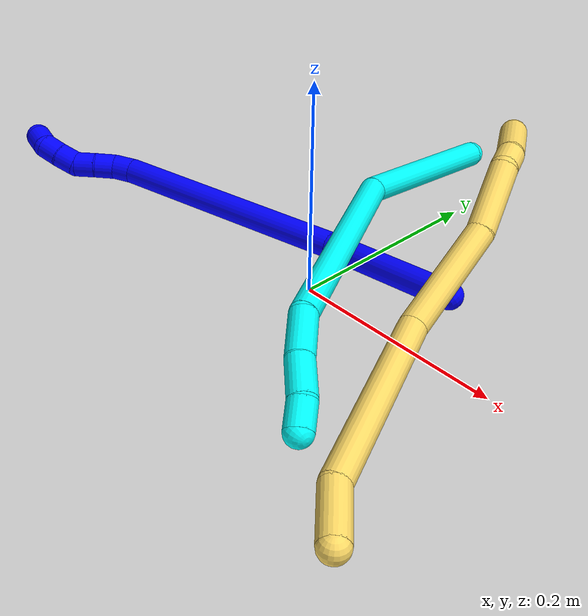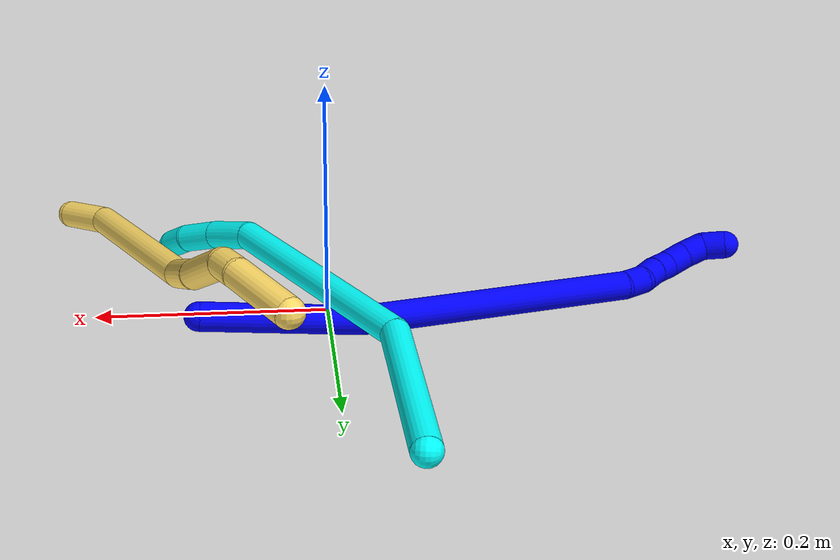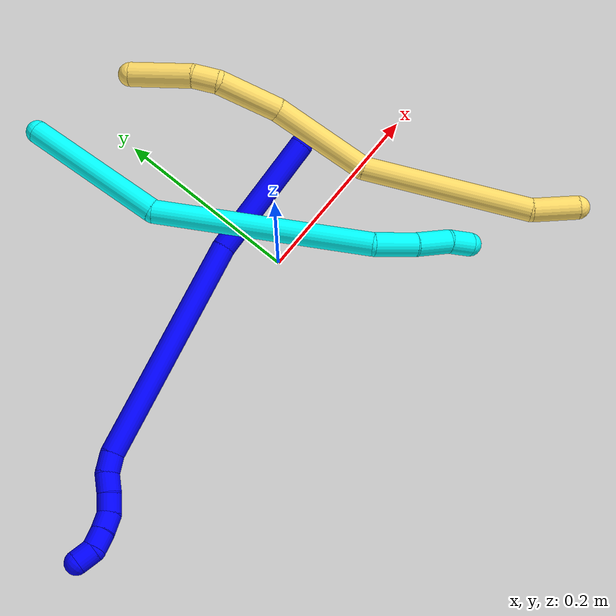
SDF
<sdf version="1.7">
 <world name="default">
  <model name="photoneo_s_sensor">
   <static>1</static>
   <pose>0 0 2 1.57079 1.57079 3.14159</pose>
   <link name="link">
    <inertial><mass>0.1</mass></inertial>
    <sensor name="sensor" type="depth">
     <update_rate>30</update_rate>
     <camera>
      <horizontal_fov>1.22</horizontal_fov>
      <image><width>1920</width><height>1200</height><format>B8G8R8</format></image>
      <clip><near>0.1</near><far>4</far></clip>
      <depth_camera><output>points</output></depth_camera>
     </camera>
     <plugin name="camera_plugin" filename="libgazebo_ros_depth_camera.so">
      <baseline>0.2</baseline>
      <alwaysOn>1</alwaysOn>
      <updateRate>0.0</updateRate>
      <cameraName>camera_ir</cameraName>
      <imageTopicName>/camera/color/image_raw</imageTopicName>
      <cameraInfoTopicName>/camera/color/camera_info</cameraInfoTopicName>
      <depthImageTopicName>/camera/depth/image_raw</depthImageTopicName>
      <depthImageCameraInfoTopicName>/camera/depth/camera_info</depthImageCameraInfoTopicName>
      <pointCloudTopicName>/camera/depth/points</pointCloudTopicName>
      <frameName>fr_optical</frameName>
      <pointCloudCutoff>0.1</pointCloudCutoff>
      <pointCloudCutoffMax>2.0</pointCloudCutoffMax>
      <distortionK1>0</distortionK1>
      <distortionK2>0</distortionK2>
      <distortionK3>0</distortionK3>
      <distortionT1>0</distortionT1>
      <distortionT2>0</distortionT2>
      <CxPrime>0</CxPrime>
      <Cx>0</Cx>
      <Cy>0</Cy>
      <focalLength>0</focalLength>
      <hackBaseline>0</hackBaseline>
     </plugin>
    </sensor>
   </link>
  </model>
  <model name="bin">
   <static>1</static>
   <link name="bottom">
    <collision name="collision-bottom">
     <pose>0 0 -0.01 0 -0 0</pose>
     <geometry><box><size>0.8 0.6 0.02</size></box></geometry>
     <surface>
      <friction><ode><mu>100</mu><mu2>100</mu2></ode></friction>
      <contact><collide_bitmask>65535</collide_bitmask></contact>
     </surface>
    </collision>
   </link>
   <link name="west_wall">
    <collision name="collision-west_wall">
     <pose>-0.41 0 0.1 0 -0 0</pose>
     <geometry><box><size>0.02 0.6 0.2</size></box></geometry>
     <surface>
      <friction><ode><mu>100</mu><mu2>100</mu2></ode></friction>
      <contact><collide_bitmask>65535</collide_bitmask></contact>
     </surface>
    </collision>
   </link>
   <link name="east_wall">
    <collision name="collision-east_wall">
     <pose>0.41 0 0.1 0 -0 0</pose>
     <geometry><box><size>0.02 0.6 0.2</size></box></geometry>
     <surface>
      <friction><ode><mu>100</mu><mu2>100</mu2></ode></friction>
      <contact><collide_bitmask>65535</collide_bitmask></contact>
     </surface>
    </collision>
   </link>
   <link name="south_wall">
    <collision name="collision-south_wall">
     <pose>0 -0.31 0.1 0 -0 0</pose>
     <geometry><box><size>0.8 0.02 0.2</size></box></geometry>
     <surface>
      <friction><ode><mu>100</mu><mu2>100</mu2></ode></friction>
      <contact><collide_bitmask>65535</collide_bitmask></contact>
     </surface>
    </collision>
   </link>
   <link name="north_wall">
    <collision name="collision-north_wall">
     <pose>0 0.31 0.1 0 -0 0</pose>
     <geometry><box><size>0.8 0.02 0.2</size></box></geometry>
     <surface>
      <friction><ode><mu>100</mu><mu2>100</mu2></ode></friction>
      <contact><collide_bitmask>65535</collide_bitmask></contact>
     </surface>
    </collision>
   </link>
  </model>
  <model name="1">
   <static>0</static>
   <link name="1">
    <collision name="collision-cylinder-e_1_1_4">
     <pose>-0.067696 -0.007238 -0.002679 1.92529 -1.45728 -1.81668</pose>
     <geometry><cylinder><radius>0.0125</radius><length>0.136269</length></cylinder></geometry>
     <surface>
      <friction><ode><mu>1.16</mu><mu2>1.16</mu2><slip1>0</slip1><slip2>0</slip2></ode></friction>
      <contact><ode><kp>1e+06</kp><kd>1</kd><max_vel>0</max_vel><min_depth>0.001</min_depth></ode></contact>
     </surface>
    </collision>
    <visual name="visual-cylinder-e_1_1_4">
     <pose>-0.067696 -0.007238 -0.002679 1.92529 -1.45728 -1.81668</pose>
     <geometry><cylinder><radius>0.0125</radius><length>0.136269</length></cylinder></geometry>
     <material><ambient>0 0 1 1</ambient></material>
    </visual>
    <collision name="collision-cylinder-e_2_4_5">
     <pose>-0.250942 -0.04515 -0.024697 2.13331 -1.2667 -1.85285</pose>
     <geometry><cylinder><radius>0.0125</radius><length>0.242212</length></cylinder></geometry>
     <surface>
      <friction><ode><mu>1.16</mu><mu2>1.16</mu2><slip1>0</slip1><slip2>0</slip2></ode></friction>
      <contact><ode><kp>1e+06</kp><kd>1</kd><max_vel>0</max_vel><min_depth>0.001</min_depth></ode></contact>
     </surface>
    </collision>
    <visual name="visual-cylinder-e_2_4_5">
     <pose>-0.250942 -0.04515 -0.024697 2.13331 -1.2667 -1.85285</pose>
     <geometry><cylinder><radius>0.0125</radius><length>0.242212</length></cylinder></geometry>
     <material><ambient>0 0 1 1</ambient></material>
    </visual>
    <collision name="collision-cylinder-e_3_5_6">
     <pose>-0.37526 -0.079753 -0.047756 2.32898 -1.01805 -1.82806</pose>
     <geometry><cylinder><radius>0.0125</radius><length>0.020607</length></cylinder></geometry>
     <surface>
      <friction><ode><mu>1.16</mu><mu2>1.16</mu2><slip1>0</slip1><slip2>0</slip2></ode></friction>
      <contact><ode><kp>1e+06</kp><kd>1</kd><max_vel>0</max_vel><min_depth>0.001</min_depth></ode></contact>
     </surface>
    </collision>
    <visual name="visual-cylinder-e_3_5_6">
     <pose>-0.37526 -0.079753 -0.047756 2.32898 -1.01805 -1.82806</pose>
     <geometry><cylinder><radius>0.0125</radius><length>0.020607</length></cylinder></geometry>
     <material><ambient>0 0 1 1</ambient></material>
    </visual>
    <collision name="collision-cylinder-e_4_6_7">
     <pose>-0.390397 -0.088605 -0.057753 2.47652 -0.673604 -1.58455</pose>
     <geometry><cylinder><radius>0.0125</radius><length>0.020416</length></cylinder></geometry>
     <surface>
      <friction><ode><mu>1.16</mu><mu2>1.16</mu2><slip1>0</slip1><slip2>0</slip2></ode></friction>
      <contact><ode><kp>1e+06</kp><kd>1</kd><max_vel>0</max_vel><min_depth>0.001</min_depth></ode></contact>
     </surface>
    </collision>
    <visual name="visual-cylinder-e_4_6_7">
     <pose>-0.390397 -0.088605 -0.057753 2.47652 -0.673604 -1.58455</pose>
     <geometry><cylinder><radius>0.0125</radius><length>0.020416</length></cylinder></geometry>
     <material><ambient>0 0 1 1</ambient></material>
    </visual>
    <collision name="collision-cylinder-e_5_7_8">
     <pose>-0.40407 -0.097514 -0.069882 2.54358 -0.801098 -1.88309</pose>
     <geometry><cylinder><radius>0.0125</radius><length>0.020343</length></cylinder></geometry>
     <surface>
      <friction><ode><mu>1.16</mu><mu2>1.16</mu2><slip1>0</slip1><slip2>0</slip2></ode></friction>
      <contact><ode><kp>1e+06</kp><kd>1</kd><max_vel>0</max_vel><min_depth>0.001</min_depth></ode></contact>
     </surface>
    </collision>
    <visual name="visual-cylinder-e_5_7_8">
     <pose>-0.40407 -0.097514 -0.069882 2.54358 -0.801098 -1.88309</pose>
     <geometry><cylinder><radius>0.0125</radius><length>0.020343</length></cylinder></geometry>
     <material><ambient>0 0 1 1</ambient></material>
    </visual>
    <collision name="collision-cylinder-e_6_8_9">
     <pose>-0.41942 -0.107251 -0.077567 1.87956 -0.926993 -1.19987</pose>
     <geometry><cylinder><radius>0.0125</radius><length>0.020118</length></cylinder></geometry>
     <surface>
      <friction><ode><mu>1.16</mu><mu2>1.16</mu2><slip1>0</slip1><slip2>0</slip2></ode></friction>
      <contact><ode><kp>1e+06</kp><kd>1</kd><max_vel>0</max_vel><min_depth>0.001</min_depth></ode></contact>
     </surface>
    </collision>
    <visual name="visual-cylinder-e_6_8_9">
     <pose>-0.41942 -0.107251 -0.077567 1.87956 -0.926993 -1.19987</pose>
     <geometry><cylinder><radius>0.0125</radius><length>0.020118</length></cylinder></geometry>
     <material><ambient>0 0 1 1</ambient></material>
    </visual>
    <collision name="collision-cylinder-e_7_9_10">
     <pose>-0.435948 -0.118238 -0.080372 1.75413 -1.01035 -1.17371</pose>
     <geometry><cylinder><radius>0.0125</radius><length>0.02003</length></cylinder></geometry>
     <surface>
      <friction><ode><mu>1.16</mu><mu2>1.16</mu2><slip1>0</slip1><slip2>0</slip2></ode></friction>
      <contact><ode><kp>1e+06</kp><kd>1</kd><max_vel>0</max_vel><min_depth>0.001</min_depth></ode></contact>
     </surface>
    </collision>
    <visual name="visual-cylinder-e_7_9_10">
     <pose>-0.435948 -0.118238 -0.080372 1.75413 -1.01035 -1.17371</pose>
     <geometry><cylinder><radius>0.0125</radius><length>0.02003</length></cylinder></geometry>
     <material><ambient>0 0 1 1</ambient></material>
    </visual>
    <collision name="collision-cylinder-e_8_10_2">
     <pose>-0.453869 -0.12528 -0.078567 0.577075 -1.23331 -0.414765</pose>
     <geometry><cylinder><radius>0.0125</radius><length>0.020004</length></cylinder></geometry>
     <surface>
      <friction><ode><mu>1.16</mu><mu2>1.16</mu2><slip1>0</slip1><slip2>0</slip2></ode></friction>
      <contact><ode><kp>1e+06</kp><kd>1</kd><max_vel>0</max_vel><min_depth>0.001</min_depth></ode></contact>
     </surface>
    </collision>
    <visual name="visual-cylinder-e_8_10_2">
     <pose>-0.453869 -0.12528 -0.078567 0.577075 -1.23331 -0.414765</pose>
     <geometry><cylinder><radius>0.0125</radius><length>0.020004</length></cylinder></geometry>
     <material><ambient>0 0 1 1</ambient></material>
    </visual>
    <collision name="collision-sphere-2">
     <pose>-0.463307 -0.127086 -0.075792 0 -0 0</pose>
     <geometry><sphere><radius>0.0125</radius></sphere></geometry>
     <surface>
      <friction><ode><mu>1.16</mu><mu2>1.16</mu2><slip1>0</slip1><slip2>0</slip2></ode></friction>
      <contact><ode><kp>1e+06</kp><kd>1</kd><max_vel>0</max_vel><min_depth>0.001</min_depth></ode></contact>
     </surface>
    </collision>
    <visual name="visual-sphere-2">
     <pose>-0.463307 -0.127086 -0.075792 0 -0 0</pose>
     <geometry><sphere><radius>0.0125</radius></sphere></geometry>
     <material><ambient>0 0 1 1</ambient></material>
    </visual>
    <collision name="collision-sphere-10">
     <pose>-0.444431 -0.123473 -0.081343 0 -0 0</pose>
     <geometry><sphere><radius>0.0125</radius></sphere></geometry>
     <surface>
      <friction><ode><mu>1.16</mu><mu2>1.16</mu2><slip1>0</slip1><slip2>0</slip2></ode></friction>
      <contact><ode><kp>1e+06</kp><kd>1</kd><max_vel>0</max_vel><min_depth>0.001</min_depth></ode></contact>
     </surface>
    </collision>
    <visual name="visual-sphere-10">
     <pose>-0.444431 -0.123473 -0.081343 0 -0 0</pose>
     <geometry><sphere><radius>0.0125</radius></sphere></geometry>
     <material><ambient>0 0 1 1</ambient></material>
    </visual>
    <collision name="collision-sphere-9">
     <pose>-0.427465 -0.113004 -0.079401 0 -0 0</pose>
     <geometry><sphere><radius>0.0125</radius></sphere></geometry>
     <surface>
      <friction><ode><mu>1.16</mu><mu2>1.16</mu2><slip1>0</slip1><slip2>0</slip2></ode></friction>
      <contact><ode><kp>1e+06</kp><kd>1</kd><max_vel>0</max_vel><min_depth>0.001</min_depth></ode></contact>
     </surface>
    </collision>
    <visual name="visual-sphere-9">
     <pose>-0.427465 -0.113004 -0.079401 0 -0 0</pose>
     <geometry><sphere><radius>0.0125</radius></sphere></geometry>
     <material><ambient>0 0 1 1</ambient></material>
    </visual>
    <collision name="collision-sphere-4">
     <pose>-0.135392 -0.014475 -0.005358 0 -0 0</pose>
     <geometry><sphere><radius>0.0125</radius></sphere></geometry>
     <surface>
      <friction><ode><mu>1.16</mu><mu2>1.16</mu2><slip1>0</slip1><slip2>0</slip2></ode></friction>
      <contact><ode><kp>1e+06</kp><kd>1</kd><max_vel>0</max_vel><min_depth>0.001</min_depth></ode></contact>
     </surface>
    </collision>
    <visual name="visual-sphere-4">
     <pose>-0.135392 -0.014475 -0.005358 0 -0 0</pose>
     <geometry><sphere><radius>0.0125</radius></sphere></geometry>
     <material><ambient>0 0 1 1</ambient></material>
    </visual>
    <collision name="collision-sphere-1">
     <geometry><sphere><radius>0.0125</radius></sphere></geometry>
     <surface>
      <friction><ode><mu>1.16</mu><mu2>1.16</mu2><slip1>0</slip1><slip2>0</slip2></ode></friction>
      <contact><ode><kp>1e+06</kp><kd>1</kd><max_vel>0</max_vel><min_depth>0.001</min_depth></ode></contact>
     </surface>
    </collision>
    <visual name="visual-sphere-1">
     <geometry><sphere><radius>0.0125</radius></sphere></geometry>
     <material><ambient>0 0 1 1</ambient></material>
    </visual>
    <collision name="collision-sphere-8">
     <pose>-0.411374 -0.101499 -0.075732 0 -0 0</pose>
     <geometry><sphere><radius>0.0125</radius></sphere></geometry>
     <surface>
      <friction><ode><mu>1.16</mu><mu2>1.16</mu2><slip1>0</slip1><slip2>0</slip2></ode></friction>
      <contact><ode><kp>1e+06</kp><kd>1</kd><max_vel>0</max_vel><min_depth>0.001</min_depth></ode></contact>
     </surface>
    </collision>
    <visual name="visual-sphere-8">
     <pose>-0.411374 -0.101499 -0.075732 0 -0 0</pose>
     <geometry><sphere><radius>0.0125</radius></sphere></geometry>
     <material><ambient>0 0 1 1</ambient></material>
    </visual>
    <collision name="collision-sphere-5">
     <pose>-0.366491 -0.075825 -0.044036 0 -0 0</pose>
     <geometry><sphere><radius>0.0125</radius></sphere></geometry>
     <surface>
      <friction><ode><mu>1.16</mu><mu2>1.16</mu2><slip1>0</slip1><slip2>0</slip2></ode></friction>
      <contact><ode><kp>1e+06</kp><kd>1</kd><max_vel>0</max_vel><min_depth>0.001</min_depth></ode></contact>
     </surface>
    </collision>
    <visual name="visual-sphere-5">
     <pose>-0.366491 -0.075825 -0.044036 0 -0 0</pose>
     <geometry><sphere><radius>0.0125</radius></sphere></geometry>
     <material><ambient>0 0 1 1</ambient></material>
    </visual>
    <collision name="collision-sphere-6">
     <pose>-0.38403 -0.083681 -0.051476 0 -0 0</pose>
     <geometry><sphere><radius>0.0125</radius></sphere></geometry>
     <surface>
      <friction><ode><mu>1.16</mu><mu2>1.16</mu2><slip1>0</slip1><slip2>0</slip2></ode></friction>
      <contact><ode><kp>1e+06</kp><kd>1</kd><max_vel>0</max_vel><min_depth>0.001</min_depth></ode></contact>
     </surface>
    </collision>
    <visual name="visual-sphere-6">
     <pose>-0.38403 -0.083681 -0.051476 0 -0 0</pose>
     <geometry><sphere><radius>0.0125</radius></sphere></geometry>
     <material><ambient>0 0 1 1</ambient></material>
    </visual>
    <collision name="collision-sphere-7">
     <pose>-0.396765 -0.093528 -0.064031 0 -0 0</pose>
     <geometry><sphere><radius>0.0125</radius></sphere></geometry>
     <surface>
      <friction><ode><mu>1.16</mu><mu2>1.16</mu2><slip1>0</slip1><slip2>0</slip2></ode></friction>
      <contact><ode><kp>1e+06</kp><kd>1</kd><max_vel>0</max_vel><min_depth>0.001</min_depth></ode></contact>
     </surface>
    </collision>
    <visual name="visual-sphere-7">
     <pose>-0.396765 -0.093528 -0.064031 0 -0 0</pose>
     <geometry><sphere><radius>0.0125</radius></sphere></geometry>
     <material><ambient>0 0 1 1</ambient></material>
    </visual>
    <inertial>
     <pose>-0.240358 -0.048781 -0.029348 0 -0 0</pose>
     <mass>0.5</mass>
     <inertia>
      <ixx>-0.000513</ixx>
      <ixy>0</ixy>
      <ixz>0</ixz>
      <iyy>0.000941</iyy>
      <iyz>0</iyz>
      <izz>0.001684</izz>
     </inertia>
    </inertial>
   </link>
   <pose>0.109209 0.05896 0.022741 -1.14606 -0.163836 -0.032212</pose>
  </model>
  <model name="3">
   <static>0</static>
   <link name="3">
    <collision name="collision-cylinder-e_1_1_4">
     <pose>0.072327 -0.029375 -0.019518 2.15727 1.1171 1.72339</pose>
     <geometry><cylinder><radius>0.0125</radius><length>0.160935</length></cylinder></geometry>
     <surface>
      <friction><ode><mu>1.16</mu><mu2>1.16</mu2><slip1>0</slip1><slip2>0</slip2></ode></friction>
      <contact><ode><kp>1e+06</kp><kd>1</kd><max_vel>0</max_vel><min_depth>0.001</min_depth></ode></contact>
     </surface>
    </collision>
    <visual name="visual-cylinder-e_1_1_4">
     <pose>0.072327 -0.029375 -0.019518 2.15727 1.1171 1.72339</pose>
     <geometry><cylinder><radius>0.0125</radius><length>0.160935</length></cylinder></geometry>
     <material><ambient>0.003922 1 0.996078 1</ambient></material>
    </visual>
    <collision name="collision-cylinder-e_2_4_5">
     <pose>0.222791 -0.097311 -0.114698 2.67025 0.743819 2.03793</pose>
     <geometry><cylinder><radius>0.0125</radius><length>0.230798</length></cylinder></geometry>
     <surface>
      <friction><ode><mu>1.16</mu><mu2>1.16</mu2><slip1>0</slip1><slip2>0</slip2></ode></friction>
      <contact><ode><kp>1e+06</kp><kd>1</kd><max_vel>0</max_vel><min_depth>0.001</min_depth></ode></contact>
     </surface>
    </collision>
    <visual name="visual-cylinder-e_2_4_5">
     <pose>0.222791 -0.097311 -0.114698 2.67025 0.743819 2.03793</pose>
     <geometry><cylinder><radius>0.0125</radius><length>0.230798</length></cylinder></geometry>
     <material><ambient>0.003922 1 0.996078 1</ambient></material>
    </visual>
    <collision name="collision-cylinder-e_3_5_6">
     <pose>0.309585 -0.146895 -0.208315 2.59103 0.389824 1.22003</pose>
     <geometry><cylinder><radius>0.0125</radius><length>0.045558</length></cylinder></geometry>
     <surface>
      <friction><ode><mu>1.16</mu><mu2>1.16</mu2><slip1>0</slip1><slip2>0</slip2></ode></friction>
      <contact><ode><kp>1e+06</kp><kd>1</kd><max_vel>0</max_vel><min_depth>0.001</min_depth></ode></contact>
     </surface>
    </collision>
    <visual name="visual-cylinder-e_3_5_6">
     <pose>0.309585 -0.146895 -0.208315 2.59103 0.389824 1.22003</pose>
     <geometry><cylinder><radius>0.0125</radius><length>0.045558</length></cylinder></geometry>
     <material><ambient>0.003922 1 0.996078 1</ambient></material>
    </visual>
    <collision name="collision-cylinder-e_4_6_7">
     <pose>0.322773 -0.166994 -0.241661 2.60878 0.248409 0.858142</pose>
     <geometry><cylinder><radius>0.0125</radius><length>0.036864</length></cylinder></geometry>
     <surface>
      <friction><ode><mu>1.16</mu><mu2>1.16</mu2><slip1>0</slip1><slip2>0</slip2></ode></friction>
      <contact><ode><kp>1e+06</kp><kd>1</kd><max_vel>0</max_vel><min_depth>0.001</min_depth></ode></contact>
     </surface>
    </collision>
    <visual name="visual-cylinder-e_4_6_7">
     <pose>0.322773 -0.166994 -0.241661 2.60878 0.248409 0.858142</pose>
     <geometry><cylinder><radius>0.0125</radius><length>0.036864</length></cylinder></geometry>
     <material><ambient>0.003922 1 0.996078 1</ambient></material>
    </visual>
    <collision name="collision-cylinder-e_5_7_2">
     <pose>0.330664 -0.184814 -0.265952 2.36504 0.262941 0.625342</pose>
     <geometry><cylinder><radius>0.0125</radius><length>0.025844</length></cylinder></geometry>
     <surface>
      <friction><ode><mu>1.16</mu><mu2>1.16</mu2><slip1>0</slip1><slip2>0</slip2></ode></friction>
      <contact><ode><kp>1e+06</kp><kd>1</kd><max_vel>0</max_vel><min_depth>0.001</min_depth></ode></contact>
     </surface>
    </collision>
    <visual name="visual-cylinder-e_5_7_2">
     <pose>0.330664 -0.184814 -0.265952 2.36504 0.262941 0.625342</pose>
     <geometry><cylinder><radius>0.0125</radius><length>0.025844</length></cylinder></geometry>
     <material><ambient>0.003922 1 0.996078 1</ambient></material>
    </visual>
    <collision name="collision-sphere-2">
     <pose>0.334022 -0.193559 -0.274853 0 -0 0</pose>
     <geometry><sphere><radius>0.0125</radius></sphere></geometry>
     <surface>
      <friction><ode><mu>1.16</mu><mu2>1.16</mu2><slip1>0</slip1><slip2>0</slip2></ode></friction>
      <contact><ode><kp>1e+06</kp><kd>1</kd><max_vel>0</max_vel><min_depth>0.001</min_depth></ode></contact>
     </surface>
    </collision>
    <visual name="visual-sphere-2">
     <pose>0.334022 -0.193559 -0.274853 0 -0 0</pose>
     <geometry><sphere><radius>0.0125</radius></sphere></geometry>
     <material><ambient>0.003922 1 0.996078 1</ambient></material>
    </visual>
    <collision name="collision-sphere-7">
     <pose>0.327305 -0.176069 -0.257051 0 -0 0</pose>
     <geometry><sphere><radius>0.0125</radius></sphere></geometry>
     <surface>
      <friction><ode><mu>1.16</mu><mu2>1.16</mu2><slip1>0</slip1><slip2>0</slip2></ode></friction>
      <contact><ode><kp>1e+06</kp><kd>1</kd><max_vel>0</max_vel><min_depth>0.001</min_depth></ode></contact>
     </surface>
    </collision>
    <visual name="visual-sphere-7">
     <pose>0.327305 -0.176069 -0.257051 0 -0 0</pose>
     <geometry><sphere><radius>0.0125</radius></sphere></geometry>
     <material><ambient>0.003922 1 0.996078 1</ambient></material>
    </visual>
    <collision name="collision-sphere-6">
     <pose>0.318241 -0.157918 -0.226271 0 -0 0</pose>
     <geometry><sphere><radius>0.0125</radius></sphere></geometry>
     <surface>
      <friction><ode><mu>1.16</mu><mu2>1.16</mu2><slip1>0</slip1><slip2>0</slip2></ode></friction>
      <contact><ode><kp>1e+06</kp><kd>1</kd><max_vel>0</max_vel><min_depth>0.001</min_depth></ode></contact>
     </surface>
    </collision>
    <visual name="visual-sphere-6">
     <pose>0.318241 -0.157918 -0.226271 0 -0 0</pose>
     <geometry><sphere><radius>0.0125</radius></sphere></geometry>
     <material><ambient>0.003922 1 0.996078 1</ambient></material>
    </visual>
    <collision name="collision-sphere-5">
     <pose>0.300928 -0.135872 -0.190358 0 -0 0</pose>
     <geometry><sphere><radius>0.0125</radius></sphere></geometry>
     <surface>
      <friction><ode><mu>1.16</mu><mu2>1.16</mu2><slip1>0</slip1><slip2>0</slip2></ode></friction>
      <contact><ode><kp>1e+06</kp><kd>1</kd><max_vel>0</max_vel><min_depth>0.001</min_depth></ode></contact>
     </surface>
    </collision>
    <visual name="visual-sphere-5">
     <pose>0.300928 -0.135872 -0.190358 0 -0 0</pose>
     <geometry><sphere><radius>0.0125</radius></sphere></geometry>
     <material><ambient>0.003922 1 0.996078 1</ambient></material>
    </visual>
    <collision name="collision-sphere-1">
     <geometry><sphere><radius>0.0125</radius></sphere></geometry>
     <surface>
      <friction><ode><mu>1.16</mu><mu2>1.16</mu2><slip1>0</slip1><slip2>0</slip2></ode></friction>
      <contact><ode><kp>1e+06</kp><kd>1</kd><max_vel>0</max_vel><min_depth>0.001</min_depth></ode></contact>
     </surface>
    </collision>
    <visual name="visual-sphere-1">
     <geometry><sphere><radius>0.0125</radius></sphere></geometry>
     <material><ambient>0.003922 1 0.996078 1</ambient></material>
    </visual>
    <collision name="collision-sphere-4">
     <pose>0.144654 -0.05875 -0.039037 0 -0 0</pose>
     <geometry><sphere><radius>0.0125</radius></sphere></geometry>
     <surface>
      <friction><ode><mu>1.16</mu><mu2>1.16</mu2><slip1>0</slip1><slip2>0</slip2></ode></friction>
      <contact><ode><kp>1e+06</kp><kd>1</kd><max_vel>0</max_vel><min_depth>0.001</min_depth></ode></contact>
     </surface>
    </collision>
    <visual name="visual-sphere-4">
     <pose>0.144654 -0.05875 -0.039037 0 -0 0</pose>
     <geometry><sphere><radius>0.0125</radius></sphere></geometry>
     <material><ambient>0.003922 1 0.996078 1</ambient></material>
    </visual>
    <inertial>
     <pose>0.195217 -0.089623 -0.109771 0 -0 0</pose>
     <mass>0.5</mass>
     <inertia>
      <ixx>0.000515</ixx>
      <ixy>0</ixy>
      <ixz>0</ixz>
      <iyy>0.001816</iyy>
      <iyz>0</iyz>
      <izz>-0.000561</izz>
     </inertia>
    </inertial>
   </link>
   <pose>-0.053651 0.288504 0.012676 1.59294 -0.510687 -1.78193</pose>
  </model>
  <model name="5">
   <static>0</static>
   <link name="5">
    <collision name="collision-cylinder-e_1_1_4">
     <pose>-0.014573 0.020176 0.00305 -1.42077 -0.620182 0.537909</pose>
     <geometry><cylinder><radius>0.0125</radius><length>0.050151</length></cylinder></geometry>
     <surface>
      <friction><ode><mu>1.16</mu><mu2>1.16</mu2><slip1>0</slip1><slip2>0</slip2></ode></friction>
      <contact><ode><kp>1e+06</kp><kd>1</kd><max_vel>0</max_vel><min_depth>0.001</min_depth></ode></contact>
     </surface>
    </collision>
    <visual name="visual-cylinder-e_1_1_4">
     <pose>-0.014573 0.020176 0.00305 -1.42077 -0.620182 0.537909</pose>
     <geometry><cylinder><radius>0.0125</radius><length>0.050151</length></cylinder></geometry>
     <material><ambient>1 0.858824 0.4 1</ambient></material>
    </visual>
    <collision name="collision-cylinder-e_2_4_5">
     <pose>-0.054404 0.126846 0.011837 -1.50456 -0.283523 0.265558</pose>
     <geometry><cylinder><radius>0.0125</radius><length>0.180575</length></cylinder></geometry>
     <surface>
      <friction><ode><mu>1.16</mu><mu2>1.16</mu2><slip1>0</slip1><slip2>0</slip2></ode></friction>
      <contact><ode><kp>1e+06</kp><kd>1</kd><max_vel>0</max_vel><min_depth>0.001</min_depth></ode></contact>
     </surface>
    </collision>
    <visual name="visual-cylinder-e_2_4_5">
     <pose>-0.054404 0.126846 0.011837 -1.50456 -0.283523 0.265558</pose>
     <geometry><cylinder><radius>0.0125</radius><length>0.180575</length></cylinder></geometry>
     <material><ambient>1 0.858824 0.4 1</ambient></material>
    </visual>
    <collision name="collision-cylinder-e_3_5_6">
     <pose>-0.081001 0.263569 0.038469 -1.1766 -0.024628 0.01643</pose>
     <geometry><cylinder><radius>0.0125</radius><length>0.10884</length></cylinder></geometry>
     <surface>
      <friction><ode><mu>1.16</mu><mu2>1.16</mu2><slip1>0</slip1><slip2>0</slip2></ode></friction>
      <contact><ode><kp>1e+06</kp><kd>1</kd><max_vel>0</max_vel><min_depth>0.001</min_depth></ode></contact>
     </surface>
    </collision>
    <visual name="visual-cylinder-e_3_5_6">
     <pose>-0.081001 0.263569 0.038469 -1.1766 -0.024628 0.01643</pose>
     <geometry><cylinder><radius>0.0125</radius><length>0.10884</length></cylinder></geometry>
     <material><ambient>1 0.858824 0.4 1</ambient></material>
    </visual>
    <collision name="collision-cylinder-e_4_6_7">
     <pose>-0.090043 0.343041 0.075541 -1.06549 -0.226519 0.133931</pose>
     <geometry><cylinder><radius>0.0125</radius><length>0.068587</length></cylinder></geometry>
     <surface>
      <friction><ode><mu>1.16</mu><mu2>1.16</mu2><slip1>0</slip1><slip2>0</slip2></ode></friction>
      <contact><ode><kp>1e+06</kp><kd>1</kd><max_vel>0</max_vel><min_depth>0.001</min_depth></ode></contact>
     </surface>
    </collision>
    <visual name="visual-cylinder-e_4_6_7">
     <pose>-0.090043 0.343041 0.075541 -1.06549 -0.226519 0.133931</pose>
     <geometry><cylinder><radius>0.0125</radius><length>0.068587</length></cylinder></geometry>
     <material><ambient>1 0.858824 0.4 1</ambient></material>
    </visual>
    <collision name="collision-cylinder-e_5_7_8">
     <pose>-0.101377 0.38468 0.092317 -1.52249 -0.284704 0.27144</pose>
     <geometry><cylinder><radius>0.0125</radius><length>0.025864</length></cylinder></geometry>
     <surface>
      <friction><ode><mu>1.16</mu><mu2>1.16</mu2><slip1>0</slip1><slip2>0</slip2></ode></friction>
      <contact><ode><kp>1e+06</kp><kd>1</kd><max_vel>0</max_vel><min_depth>0.001</min_depth></ode></contact>
     </surface>
    </collision>
    <visual name="visual-cylinder-e_5_7_8">
     <pose>-0.101377 0.38468 0.092317 -1.52249 -0.284704 0.27144</pose>
     <geometry><cylinder><radius>0.0125</radius><length>0.025864</length></cylinder></geometry>
     <material><ambient>1 0.858824 0.4 1</ambient></material>
    </visual>
    <collision name="collision-cylinder-e_6_8_2">
     <pose>-0.118653 0.426807 0.088631 -1.71393 -0.426359 0.489773</pose>
     <geometry><cylinder><radius>0.0125</radius><length>0.065983</length></cylinder></geometry>
     <surface>
      <friction><ode><mu>1.16</mu><mu2>1.16</mu2><slip1>0</slip1><slip2>0</slip2></ode></friction>
      <contact><ode><kp>1e+06</kp><kd>1</kd><max_vel>0</max_vel><min_depth>0.001</min_depth></ode></contact>
     </surface>
    </collision>
    <visual name="visual-cylinder-e_6_8_2">
     <pose>-0.118653 0.426807 0.088631 -1.71393 -0.426359 0.489773</pose>
     <geometry><cylinder><radius>0.0125</radius><length>0.065983</length></cylinder></geometry>
     <material><ambient>1 0.858824 0.4 1</ambient></material>
    </visual>
    <collision name="collision-sphere-2">
     <pose>-0.132297 0.456538 0.084347 0 -0 0</pose>
     <geometry><sphere><radius>0.0125</radius></sphere></geometry>
     <surface>
      <friction><ode><mu>1.16</mu><mu2>1.16</mu2><slip1>0</slip1><slip2>0</slip2></ode></friction>
      <contact><ode><kp>1e+06</kp><kd>1</kd><max_vel>0</max_vel><min_depth>0.001</min_depth></ode></contact>
     </surface>
    </collision>
    <visual name="visual-sphere-2">
     <pose>-0.132297 0.456538 0.084347 0 -0 0</pose>
     <geometry><sphere><radius>0.0125</radius></sphere></geometry>
     <material><ambient>1 0.858824 0.4 1</ambient></material>
    </visual>
    <collision name="collision-sphere-4">
     <pose>-0.029147 0.040353 0.0061 0 -0 0</pose>
     <geometry><sphere><radius>0.0125</radius></sphere></geometry>
     <surface>
      <friction><ode><mu>1.16</mu><mu2>1.16</mu2><slip1>0</slip1><slip2>0</slip2></ode></friction>
      <contact><ode><kp>1e+06</kp><kd>1</kd><max_vel>0</max_vel><min_depth>0.001</min_depth></ode></contact>
     </surface>
    </collision>
    <visual name="visual-sphere-4">
     <pose>-0.029147 0.040353 0.0061 0 -0 0</pose>
     <geometry><sphere><radius>0.0125</radius></sphere></geometry>
     <material><ambient>1 0.858824 0.4 1</ambient></material>
    </visual>
    <collision name="collision-sphere-1">
     <geometry><sphere><radius>0.0125</radius></sphere></geometry>
     <surface>
      <friction><ode><mu>1.16</mu><mu2>1.16</mu2><slip1>0</slip1><slip2>0</slip2></ode></friction>
      <contact><ode><kp>1e+06</kp><kd>1</kd><max_vel>0</max_vel><min_depth>0.001</min_depth></ode></contact>
     </surface>
    </collision>
    <visual name="visual-sphere-1">
     <geometry><sphere><radius>0.0125</radius></sphere></geometry>
     <material><ambient>1 0.858824 0.4 1</ambient></material>
    </visual>
    <collision name="collision-sphere-8">
     <pose>-0.105009 0.397076 0.092916 0 -0 0</pose>
     <geometry><sphere><radius>0.0125</radius></sphere></geometry>
     <surface>
      <friction><ode><mu>1.16</mu><mu2>1.16</mu2><slip1>0</slip1><slip2>0</slip2></ode></friction>
      <contact><ode><kp>1e+06</kp><kd>1</kd><max_vel>0</max_vel><min_depth>0.001</min_depth></ode></contact>
     </surface>
    </collision>
    <visual name="visual-sphere-8">
     <pose>-0.105009 0.397076 0.092916 0 -0 0</pose>
     <geometry><sphere><radius>0.0125</radius></sphere></geometry>
     <material><ambient>1 0.858824 0.4 1</ambient></material>
    </visual>
    <collision name="collision-sphere-5">
     <pose>-0.079661 0.213338 0.017575 0 -0 0</pose>
     <geometry><sphere><radius>0.0125</radius></sphere></geometry>
     <surface>
      <friction><ode><mu>1.16</mu><mu2>1.16</mu2><slip1>0</slip1><slip2>0</slip2></ode></friction>
      <contact><ode><kp>1e+06</kp><kd>1</kd><max_vel>0</max_vel><min_depth>0.001</min_depth></ode></contact>
     </surface>
    </collision>
    <visual name="visual-sphere-5">
     <pose>-0.079661 0.213338 0.017575 0 -0 0</pose>
     <geometry><sphere><radius>0.0125</radius></sphere></geometry>
     <material><ambient>1 0.858824 0.4 1</ambient></material>
    </visual>
    <collision name="collision-sphere-6">
     <pose>-0.082341 0.3138 0.059364 0 -0 0</pose>
     <geometry><sphere><radius>0.0125</radius></sphere></geometry>
     <surface>
      <friction><ode><mu>1.16</mu><mu2>1.16</mu2><slip1>0</slip1><slip2>0</slip2></ode></friction>
      <contact><ode><kp>1e+06</kp><kd>1</kd><max_vel>0</max_vel><min_depth>0.001</min_depth></ode></contact>
     </surface>
    </collision>
    <visual name="visual-sphere-6">
     <pose>-0.082341 0.3138 0.059364 0 -0 0</pose>
     <geometry><sphere><radius>0.0125</radius></sphere></geometry>
     <material><ambient>1 0.858824 0.4 1</ambient></material>
    </visual>
    <collision name="collision-sphere-7">
     <pose>-0.097745 0.372283 0.091717 0 -0 0</pose>
     <geometry><sphere><radius>0.0125</radius></sphere></geometry>
     <surface>
      <friction><ode><mu>1.16</mu><mu2>1.16</mu2><slip1>0</slip1><slip2>0</slip2></ode></friction>
      <contact><ode><kp>1e+06</kp><kd>1</kd><max_vel>0</max_vel><min_depth>0.001</min_depth></ode></contact>
     </surface>
    </collision>
    <visual name="visual-sphere-7">
     <pose>-0.097745 0.372283 0.091717 0 -0 0</pose>
     <geometry><sphere><radius>0.0125</radius></sphere></geometry>
     <material><ambient>1 0.858824 0.4 1</ambient></material>
    </visual>
    <inertial>
     <pose>-0.071996 0.228487 0.039789 0 -0 0</pose>
     <mass>0.5</mass>
     <inertia>
      <ixx>0.000772</ixx>
      <ixy>0</ixy>
      <ixz>0</ixz>
      <iyy>0.000317</iyy>
      <iyz>0</iyz>
      <izz>-0.000467</izz>
     </inertia>
    </inertial>
   </link>
   <pose>0.239279 -0.208582 0.022977 -0.035321 0.017731 0.155605</pose>
  </model>
 </world>
</sdf>
